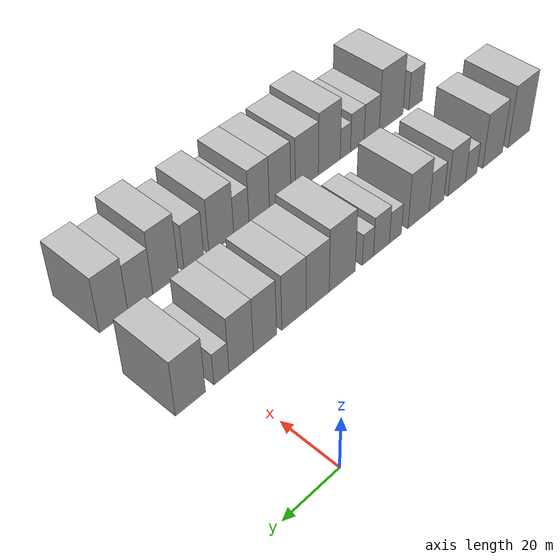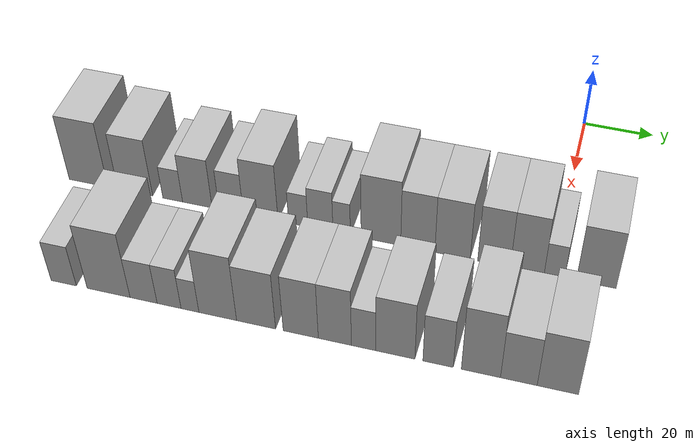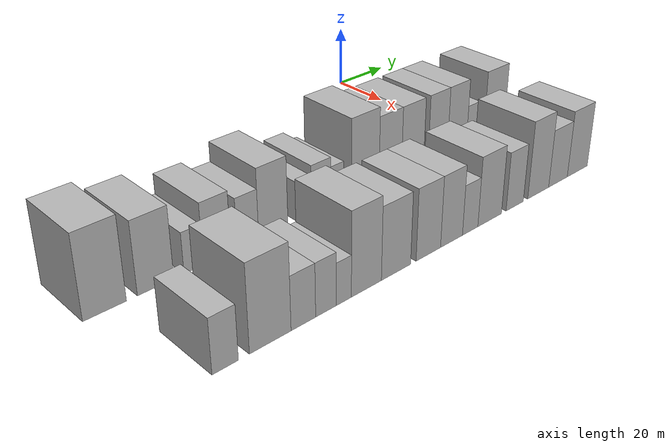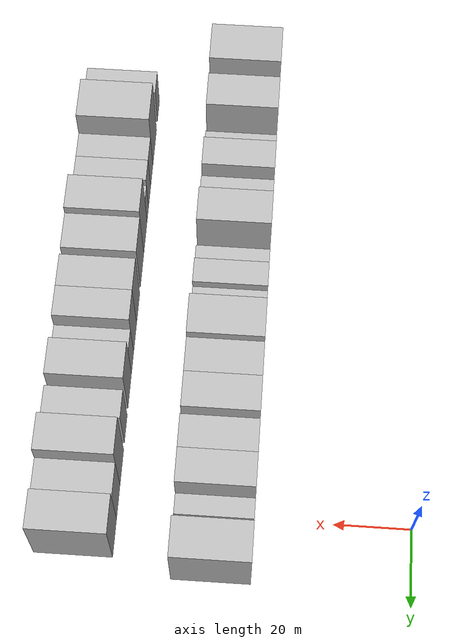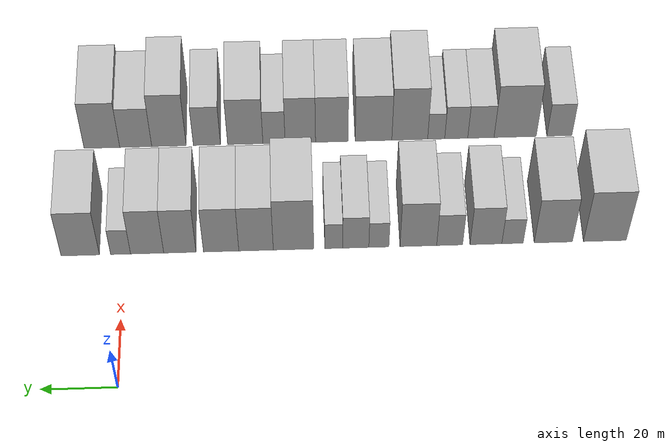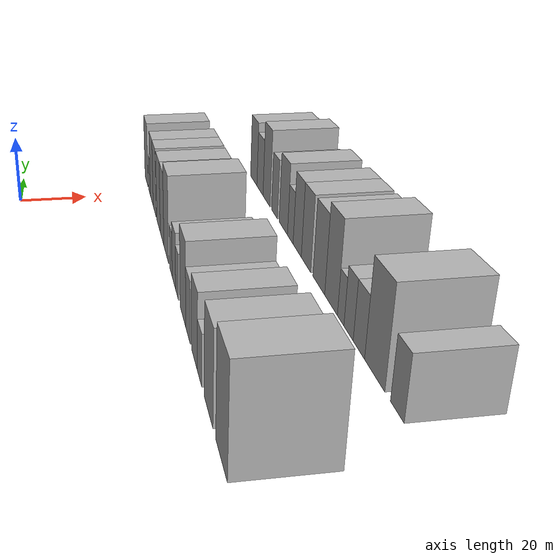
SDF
<sdf version="1.6">
 <world name="default">
  <model name="building_15">
   <static>1</static>
   <pose>50.0000 -130.1336 0 0.000000 0.000000 0.000000</pose>
   <link name="link">
    <pose>0 0 12.00 0 0 0</pose>
    <collision name="collision"><geometry><box><size>20.0000 11.6189 24.0000</size></box></geometry></collision>
    <visual name="visual">
     <cast_shadows>0</cast_shadows>
     <geometry><box><size>20.0000 11.6189 24.0000</size></box></geometry>
     <material>
      <script>
       <uri>model://HANNAS_wall/materials/scripts</uri>
       <uri>model://HANNAS_wall/materials/textures</uri>
       <name>vrc/HANNAS_wall</name>
      </script>
     </material>
    </visual>
   </link>
  </model>
  <model name="building_16">
   <static>1</static>
   <pose>50.0000 -116.1493 0 0.000000 0.000000 0.000000</pose>
   <link name="link">
    <pose>0 0 10.50 0 0 0</pose>
    <collision name="collision"><geometry><box><size>20.0000 10.3499 21.0000</size></box></geometry></collision>
    <visual name="visual">
     <cast_shadows>0</cast_shadows>
     <geometry><box><size>20.0000 10.3499 21.0000</size></box></geometry>
     <material>
      <script>
       <uri>model://HANNAS_wall/materials/scripts</uri>
       <uri>model://HANNAS_wall/materials/textures</uri>
       <name>vrc/HANNAS_wall</name>
      </script>
     </material>
    </visual>
   </link>
  </model>
  <model name="building_17">
   <static>1</static>
   <pose>50.0000 -105.0805 0 0.000000 0.000000 0.000000</pose>
   <link name="link">
    <pose>0 0 6.00 0 0 0</pose>
    <collision name="collision"><geometry><box><size>20.0000 5.7877 12.0000</size></box></geometry></collision>
    <visual name="visual">
     <cast_shadows>0</cast_shadows>
     <geometry><box><size>20.0000 5.7877 12.0000</size></box></geometry>
     <material>
      <script>
       <uri>model://HANNAS_wall/materials/scripts</uri>
       <uri>model://HANNAS_wall/materials/textures</uri>
       <name>vrc/HANNAS_wall</name>
      </script>
     </material>
    </visual>
   </link>
  </model>
  <model name="building_18">
   <static>1</static>
   <pose>50.0000 -97.8839 0 0.000000 0.000000 0.000000</pose>
   <link name="link">
    <pose>0 0 9.00 0 0 0</pose>
    <collision name="collision"><geometry><box><size>20.0000 8.6054 18.0000</size></box></geometry></collision>
    <visual name="visual">
     <cast_shadows>0</cast_shadows>
     <geometry><box><size>20.0000 8.6054 18.0000</size></box></geometry>
     <material>
      <script>
       <uri>model://HANNAS_wall/materials/scripts</uri>
       <uri>model://HANNAS_wall/materials/textures</uri>
       <name>vrc/HANNAS_wall</name>
      </script>
     </material>
    </visual>
   </link>
  </model>
  <model name="building_19">
   <static>1</static>
   <pose>50.0000 -88.0649 0 0.000000 0.000000 0.000000</pose>
   <link name="link">
    <pose>0 0 7.50 0 0 0</pose>
    <collision name="collision"><geometry><box><size>20.0000 7.0328 15.0000</size></box></geometry></collision>
    <visual name="visual">
     <cast_shadows>0</cast_shadows>
     <geometry><box><size>20.0000 7.0328 15.0000</size></box></geometry>
     <material>
      <script>
       <uri>model://HANNAS_wall/materials/scripts</uri>
       <uri>model://HANNAS_wall/materials/textures</uri>
       <name>vrc/HANNAS_wall</name>
      </script>
     </material>
    </visual>
   </link>
  </model>
  <model name="building_20">
   <static>1</static>
   <pose>50.0000 -79.5889 0 0.000000 0.000000 0.000000</pose>
   <link name="link">
    <pose>0 0 10.50 0 0 0</pose>
    <collision name="collision"><geometry><box><size>20.0000 9.9191 21.0000</size></box></geometry></collision>
    <visual name="visual">
     <cast_shadows>0</cast_shadows>
     <geometry><box><size>20.0000 9.9191 21.0000</size></box></geometry>
     <material>
      <script>
       <uri>model://HANNAS_wall/materials/scripts</uri>
       <uri>model://HANNAS_wall/materials/textures</uri>
       <name>vrc/HANNAS_wall</name>
      </script>
     </material>
    </visual>
   </link>
  </model>
  <model name="building_21">
   <static>1</static>
   <pose>50.0000 -68.9209 0 0.000000 0.000000 0.000000</pose>
   <link name="link">
    <pose>0 0 6.00 0 0 0</pose>
    <collision name="collision"><geometry><box><size>20.0000 5.4170 12.0000</size></box></geometry></collision>
    <visual name="visual">
     <cast_shadows>0</cast_shadows>
     <geometry><box><size>20.0000 5.4170 12.0000</size></box></geometry>
     <material>
      <script>
       <uri>model://HANNAS_wall/materials/scripts</uri>
       <uri>model://HANNAS_wall/materials/textures</uri>
       <name>vrc/HANNAS_wall</name>
      </script>
     </material>
    </visual>
   </link>
  </model>
  <model name="building_22">
   <static>1</static>
   <pose>50.0000 -62.6847 0 0.000000 0.000000 0.000000</pose>
   <link name="link">
    <pose>0 0 7.50 0 0 0</pose>
    <collision name="collision"><geometry><box><size>20.0000 7.0552 15.0000</size></box></geometry></collision>
    <visual name="visual">
     <cast_shadows>0</cast_shadows>
     <geometry><box><size>20.0000 7.0552 15.0000</size></box></geometry>
     <material>
      <script>
       <uri>model://HANNAS_wall/materials/scripts</uri>
       <uri>model://HANNAS_wall/materials/textures</uri>
       <name>vrc/HANNAS_wall</name>
      </script>
     </material>
    </visual>
   </link>
  </model>
  <model name="building_23">
   <static>1</static>
   <pose>50.0000 -56.7431 0 0.000000 0.000000 0.000000</pose>
   <link name="link">
    <pose>0 0 6.00 0 0 0</pose>
    <collision name="collision"><geometry><box><size>20.0000 4.8282 12.0000</size></box></geometry></collision>
    <visual name="visual">
     <cast_shadows>0</cast_shadows>
     <geometry><box><size>20.0000 4.8282 12.0000</size></box></geometry>
     <material>
      <script>
       <uri>model://HANNAS_wall/materials/scripts</uri>
       <uri>model://HANNAS_wall/materials/textures</uri>
       <name>vrc/HANNAS_wall</name>
      </script>
     </material>
    </visual>
   </link>
  </model>
  <model name="building_24">
   <static>1</static>
   <pose>50.0000 -45.8779 0 0.000000 0.000000 0.000000</pose>
   <link name="link">
    <pose>0 0 12.00 0 0 0</pose>
    <collision name="collision"><geometry><box><size>20.0000 10.9021 24.0000</size></box></geometry></collision>
    <visual name="visual">
     <cast_shadows>0</cast_shadows>
     <geometry><box><size>20.0000 10.9021 24.0000</size></box></geometry>
     <material>
      <script>
       <uri>model://HANNAS_wall/materials/scripts</uri>
       <uri>model://HANNAS_wall/materials/textures</uri>
       <name>vrc/HANNAS_wall</name>
      </script>
     </material>
    </visual>
   </link>
  </model>
  <model name="building_25">
   <static>1</static>
   <pose>50.0000 -35.7782 0 0.000000 0.000000 0.000000</pose>
   <link name="link">
    <pose>0 0 10.50 0 0 0</pose>
    <collision name="collision"><geometry><box><size>20.0000 9.2973 21.0000</size></box></geometry></collision>
    <visual name="visual">
     <cast_shadows>0</cast_shadows>
     <geometry><box><size>20.0000 9.2973 21.0000</size></box></geometry>
     <material>
      <script>
       <uri>model://HANNAS_wall/materials/scripts</uri>
       <uri>model://HANNAS_wall/materials/textures</uri>
       <name>vrc/HANNAS_wall</name>
      </script>
     </material>
    </visual>
   </link>
  </model>
  <model name="building_26">
   <static>1</static>
   <pose>50.0000 -26.3639 0 0.000000 0.000000 0.000000</pose>
   <link name="link">
    <pose>0 0 10.50 0 0 0</pose>
    <collision name="collision"><geometry><box><size>20.0000 9.5312 21.0000</size></box></geometry></collision>
    <visual name="visual">
     <cast_shadows>0</cast_shadows>
     <geometry><box><size>20.0000 9.5312 21.0000</size></box></geometry>
     <material>
      <script>
       <uri>model://HANNAS_wall/materials/scripts</uri>
       <uri>model://HANNAS_wall/materials/textures</uri>
       <name>vrc/HANNAS_wall</name>
      </script>
     </material>
    </visual>
   </link>
  </model>
  <model name="building_27">
   <static>1</static>
   <pose>50.0000 -15.2484 0 0.000000 0.000000 0.000000</pose>
   <link name="link">
    <pose>0 0 10.50 0 0 0</pose>
    <collision name="collision"><geometry><box><size>20.0000 8.6997 21.0000</size></box></geometry></collision>
    <visual name="visual">
     <cast_shadows>0</cast_shadows>
     <geometry><box><size>20.0000 8.6997 21.0000</size></box></geometry>
     <material>
      <script>
       <uri>model://HANNAS_wall/materials/scripts</uri>
       <uri>model://HANNAS_wall/materials/textures</uri>
       <name>vrc/HANNAS_wall</name>
      </script>
     </material>
    </visual>
   </link>
  </model>
  <model name="building_28">
   <static>1</static>
   <pose>50.0000 -6.4340 0 0.000000 0.000000 0.000000</pose>
   <link name="link">
    <pose>0 0 10.50 0 0 0</pose>
    <collision name="collision"><geometry><box><size>20.0000 8.9290 21.0000</size></box></geometry></collision>
    <visual name="visual">
     <cast_shadows>0</cast_shadows>
     <geometry><box><size>20.0000 8.9290 21.0000</size></box></geometry>
     <material>
      <script>
       <uri>model://HANNAS_wall/materials/scripts</uri>
       <uri>model://HANNAS_wall/materials/textures</uri>
       <name>vrc/HANNAS_wall</name>
      </script>
     </material>
    </visual>
   </link>
  </model>
  <model name="building_29">
   <static>1</static>
   <pose>50.0000 0.7145 0 0.000000 0.000000 0.000000</pose>
   <link name="link">
    <pose>0 0 6.00 0 0 0</pose>
    <collision name="collision"><geometry><box><size>20.0000 5.3681 12.0000</size></box></geometry></collision>
    <visual name="visual">
     <cast_shadows>0</cast_shadows>
     <geometry><box><size>20.0000 5.3681 12.0000</size></box></geometry>
     <material>
      <script>
       <uri>model://HANNAS_wall/materials/scripts</uri>
       <uri>model://HANNAS_wall/materials/textures</uri>
       <name>vrc/HANNAS_wall</name>
      </script>
     </material>
    </visual>
   </link>
  </model>
  <model name="building_30">
   <static>1</static>
   <pose>50.0000 11.5483 0 0.000000 0.000000 0.000000</pose>
   <link name="link">
    <pose>0 0 10.50 0 0 0</pose>
    <collision name="collision"><geometry><box><size>20.0000 10.2995 21.0000</size></box></geometry></collision>
    <visual name="visual">
     <cast_shadows>0</cast_shadows>
     <geometry><box><size>20.0000 10.2995 21.0000</size></box></geometry>
     <material>
      <script>
       <uri>model://HANNAS_wall/materials/scripts</uri>
       <uri>model://HANNAS_wall/materials/textures</uri>
       <name>vrc/HANNAS_wall</name>
      </script>
     </material>
    </visual>
   </link>
  </model>
  <model name="building_80">
   <static>1</static>
   <pose>85.0000 -121.3736 0 0.000000 0.000000 0.000000</pose>
   <link name="link">
    <pose>0 0 7.50 0 0 0</pose>
    <collision name="collision"><geometry><box><size>20.0000 7.0573 15.0000</size></box></geometry></collision>
    <visual name="visual">
     <cast_shadows>0</cast_shadows>
     <geometry><box><size>20.0000 7.0573 15.0000</size></box></geometry>
     <material>
      <script>
       <uri>model://HANNAS_wall/materials/scripts</uri>
       <uri>model://HANNAS_wall/materials/textures</uri>
       <name>vrc/HANNAS_wall</name>
      </script>
     </material>
    </visual>
   </link>
  </model>
  <model name="building_81">
   <static>1</static>
   <pose>85.0000 -108.8997 0 0.000000 0.000000 0.000000</pose>
   <link name="link">
    <pose>0 0 12.00 0 0 0</pose>
    <collision name="collision"><geometry><box><size>20.0000 11.8905 24.0000</size></box></geometry></collision>
    <visual name="visual">
     <cast_shadows>0</cast_shadows>
     <geometry><box><size>20.0000 11.8905 24.0000</size></box></geometry>
     <material>
      <script>
       <uri>model://HANNAS_wall/materials/scripts</uri>
       <uri>model://HANNAS_wall/materials/textures</uri>
       <name>vrc/HANNAS_wall</name>
      </script>
     </material>
    </visual>
   </link>
  </model>
  <model name="building_82">
   <static>1</static>
   <pose>85.0000 -99.2507 0 0.000000 0.000000 0.000000</pose>
   <link name="link">
    <pose>0 0 7.50 0 0 0</pose>
    <collision name="collision"><geometry><box><size>20.0000 7.4075 15.0000</size></box></geometry></collision>
    <visual name="visual">
     <cast_shadows>0</cast_shadows>
     <geometry><box><size>20.0000 7.4075 15.0000</size></box></geometry>
     <material>
      <script>
       <uri>model://HANNAS_wall/materials/scripts</uri>
       <uri>model://HANNAS_wall/materials/textures</uri>
       <name>vrc/HANNAS_wall</name>
      </script>
     </material>
    </visual>
   </link>
  </model>
  <model name="building_83">
   <static>1</static>
   <pose>85.0000 -92.3049 0 0.000000 0.000000 0.000000</pose>
   <link name="link">
    <pose>0 0 7.50 0 0 0</pose>
    <collision name="collision"><geometry><box><size>20.0000 6.4841 15.0000</size></box></geometry></collision>
    <visual name="visual">
     <cast_shadows>0</cast_shadows>
     <geometry><box><size>20.0000 6.4841 15.0000</size></box></geometry>
     <material>
      <script>
       <uri>model://HANNAS_wall/materials/scripts</uri>
       <uri>model://HANNAS_wall/materials/textures</uri>
       <name>vrc/HANNAS_wall</name>
      </script>
     </material>
    </visual>
   </link>
  </model>
  <model name="building_84">
   <static>1</static>
   <pose>85.0000 -86.6587 0 0.000000 0.000000 0.000000</pose>
   <link name="link">
    <pose>0 0 6.00 0 0 0</pose>
    <collision name="collision"><geometry><box><size>20.0000 4.8084 12.0000</size></box></geometry></collision>
    <visual name="visual">
     <cast_shadows>0</cast_shadows>
     <geometry><box><size>20.0000 4.8084 12.0000</size></box></geometry>
     <material>
      <script>
       <uri>model://HANNAS_wall/materials/scripts</uri>
       <uri>model://HANNAS_wall/materials/textures</uri>
       <name>vrc/HANNAS_wall</name>
      </script>
     </material>
    </visual>
   </link>
  </model>
  <model name="building_85">
   <static>1</static>
   <pose>85.0000 -79.2199 0 0.000000 0.000000 0.000000</pose>
   <link name="link">
    <pose>0 0 12.00 0 0 0</pose>
    <collision name="collision"><geometry><box><size>20.0000 10.0691 24.0000</size></box></geometry></collision>
    <visual name="visual">
     <cast_shadows>0</cast_shadows>
     <geometry><box><size>20.0000 10.0691 24.0000</size></box></geometry>
     <material>
      <script>
       <uri>model://HANNAS_wall/materials/scripts</uri>
       <uri>model://HANNAS_wall/materials/textures</uri>
       <name>vrc/HANNAS_wall</name>
      </script>
     </material>
    </visual>
   </link>
  </model>
  <model name="building_86">
   <static>1</static>
   <pose>85.0000 -69.0376 0 0.000000 0.000000 0.000000</pose>
   <link name="link">
    <pose>0 0 10.50 0 0 0</pose>
    <collision name="collision"><geometry><box><size>20.0000 10.2957 21.0000</size></box></geometry></collision>
    <visual name="visual">
     <cast_shadows>0</cast_shadows>
     <geometry><box><size>20.0000 10.2957 21.0000</size></box></geometry>
     <material>
      <script>
       <uri>model://HANNAS_wall/materials/scripts</uri>
       <uri>model://HANNAS_wall/materials/textures</uri>
       <name>vrc/HANNAS_wall</name>
      </script>
     </material>
    </visual>
   </link>
  </model>
  <model name="building_87">
   <static>1</static>
   <pose>85.0000 -57.3204 0 0.000000 0.000000 0.000000</pose>
   <link name="link">
    <pose>0 0 10.50 0 0 0</pose>
    <collision name="collision"><geometry><box><size>20.0000 9.1387 21.0000</size></box></geometry></collision>
    <visual name="visual">
     <cast_shadows>0</cast_shadows>
     <geometry><box><size>20.0000 9.1387 21.0000</size></box></geometry>
     <material>
      <script>
       <uri>model://HANNAS_wall/materials/scripts</uri>
       <uri>model://HANNAS_wall/materials/textures</uri>
       <name>vrc/HANNAS_wall</name>
      </script>
     </material>
    </visual>
   </link>
  </model>
  <model name="building_88">
   <static>1</static>
   <pose>85.0000 -48.4786 0 0.000000 0.000000 0.000000</pose>
   <link name="link">
    <pose>0 0 10.50 0 0 0</pose>
    <collision name="collision"><geometry><box><size>20.0000 8.5449 21.0000</size></box></geometry></collision>
    <visual name="visual">
     <cast_shadows>0</cast_shadows>
     <geometry><box><size>20.0000 8.5449 21.0000</size></box></geometry>
     <material>
      <script>
       <uri>model://HANNAS_wall/materials/scripts</uri>
       <uri>model://HANNAS_wall/materials/textures</uri>
       <name>vrc/HANNAS_wall</name>
      </script>
     </material>
    </visual>
   </link>
  </model>
  <model name="building_89">
   <static>1</static>
   <pose>85.0000 -41.0953 0 0.000000 0.000000 0.000000</pose>
   <link name="link">
    <pose>0 0 7.50 0 0 0</pose>
    <collision name="collision"><geometry><box><size>20.0000 6.2216 15.0000</size></box></geometry></collision>
    <visual name="visual">
     <cast_shadows>0</cast_shadows>
     <geometry><box><size>20.0000 6.2216 15.0000</size></box></geometry>
     <material>
      <script>
       <uri>model://HANNAS_wall/materials/scripts</uri>
       <uri>model://HANNAS_wall/materials/textures</uri>
       <name>vrc/HANNAS_wall</name>
      </script>
     </material>
    </visual>
   </link>
  </model>
  <model name="building_90">
   <static>1</static>
   <pose>85.0000 -33.0360 0 0.000000 0.000000 0.000000</pose>
   <link name="link">
    <pose>0 0 10.50 0 0 0</pose>
    <collision name="collision"><geometry><box><size>20.0000 9.8969 21.0000</size></box></geometry></collision>
    <visual name="visual">
     <cast_shadows>0</cast_shadows>
     <geometry><box><size>20.0000 9.8969 21.0000</size></box></geometry>
     <material>
      <script>
       <uri>model://HANNAS_wall/materials/scripts</uri>
       <uri>model://HANNAS_wall/materials/textures</uri>
       <name>vrc/HANNAS_wall</name>
      </script>
     </material>
    </visual>
   </link>
  </model>
  <model name="building_91">
   <static>1</static>
   <pose>85.0000 -22.2916 0 0.000000 0.000000 0.000000</pose>
   <link name="link">
    <pose>0 0 9.00 0 0 0</pose>
    <collision name="collision"><geometry><box><size>20.0000 7.5919 18.0000</size></box></geometry></collision>
    <visual name="visual">
     <cast_shadows>0</cast_shadows>
     <geometry><box><size>20.0000 7.5919 18.0000</size></box></geometry>
     <material>
      <script>
       <uri>model://HANNAS_wall/materials/scripts</uri>
       <uri>model://HANNAS_wall/materials/textures</uri>
       <name>vrc/HANNAS_wall</name>
      </script>
     </material>
    </visual>
   </link>
  </model>
  <model name="building_92">
   <static>1</static>
   <pose>85.0000 -11.6652 0 0.000000 0.000000 0.000000</pose>
   <link name="link">
    <pose>0 0 12.00 0 0 0</pose>
    <collision name="collision"><geometry><box><size>20.0000 9.6609 24.0000</size></box></geometry></collision>
    <visual name="visual">
     <cast_shadows>0</cast_shadows>
     <geometry><box><size>20.0000 9.6609 24.0000</size></box></geometry>
     <material>
      <script>
       <uri>model://HANNAS_wall/materials/scripts</uri>
       <uri>model://HANNAS_wall/materials/textures</uri>
       <name>vrc/HANNAS_wall</name>
      </script>
     </material>
    </visual>
   </link>
  </model>
  <model name="building_93">
   <static>1</static>
   <pose>85.0000 -2.3590 0 0.000000 0.000000 0.000000</pose>
   <link name="link">
    <pose>0 0 9.00 0 0 0</pose>
    <collision name="collision"><geometry><box><size>20.0000 8.9514 18.0000</size></box></geometry></collision>
    <visual name="visual">
     <cast_shadows>0</cast_shadows>
     <geometry><box><size>20.0000 8.9514 18.0000</size></box></geometry>
     <material>
      <script>
       <uri>model://HANNAS_wall/materials/scripts</uri>
       <uri>model://HANNAS_wall/materials/textures</uri>
       <name>vrc/HANNAS_wall</name>
      </script>
     </material>
    </visual>
   </link>
  </model>
  <model name="building_94">
   <static>1</static>
   <pose>85.0000 7.1049 0 0.000000 0.000000 0.000000</pose>
   <link name="link">
    <pose>0 0 10.50 0 0 0</pose>
    <collision name="collision"><geometry><box><size>20.0000 9.9765 21.0000</size></box></geometry></collision>
    <visual name="visual">
     <cast_shadows>0</cast_shadows>
     <geometry><box><size>20.0000 9.9765 21.0000</size></box></geometry>
     <material>
      <script>
       <uri>model://HANNAS_wall/materials/scripts</uri>
       <uri>model://HANNAS_wall/materials/textures</uri>
       <name>vrc/HANNAS_wall</name>
      </script>
     </material>
    </visual>
   </link>
  </model>
 </world>
</sdf>
